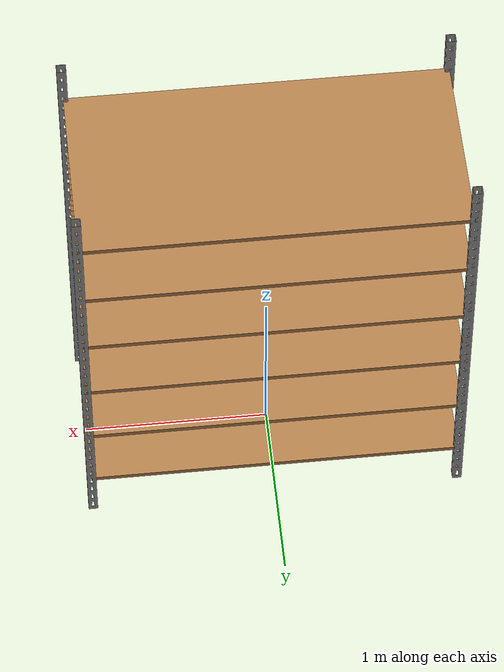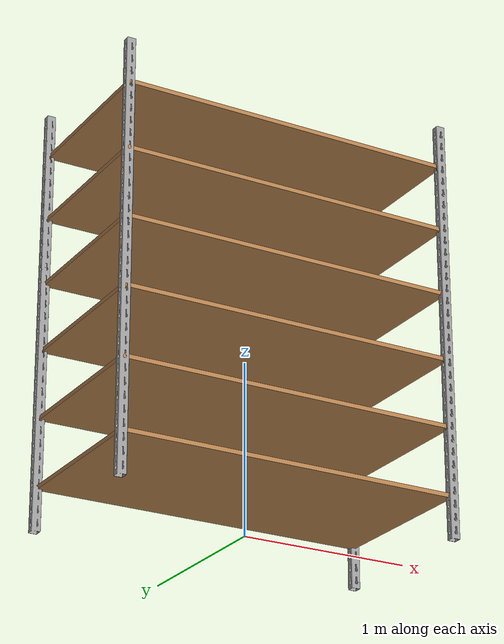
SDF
<?xml version='1.0'?>
<sdf version='1.6'>
  <model name='shelf'>
    <link name='link_1'>
      <inertial>
        <mass>1</mass>
        <inertia>
          <ixx>0.166667</ixx>
          <ixy>0</ixy>
          <ixz>0</ixz>
          <iyy>0.166667</iyy>
          <iyz>0</iyz>
          <izz>0.166667</izz>
        </inertia>
        <pose frame=''>0 0 0 0 -0 0</pose>
      </inertial>
      <pose frame=''>0 0 0 0 -0 0</pose>
      <gravity>1</gravity>
      <self_collide>0</self_collide>
      <kinematic>0</kinematic>
      <enable_wind>0</enable_wind>
      <visual name='ModelPreview_2::link_1::visual_6'>
        <pose frame=''>1 0.5 0 0 -0 0</pose>
        <geometry>
	   <mesh>
	      <uri>model://shelf/model/2-5mDirek.stl</uri>
	      <scale>0.001 0.001 0.001</scale>
           </mesh>
        </geometry>
        <material>
          <lighting>1</lighting>
          <script>
            <uri>file://media/materials/scripts/gazebo.material</uri>
            <name>Gazebo/Grey</name>
          </script>
          <shader type='vertex'>
            <normal_map>__default__</normal_map>
          </shader>
          <ambient>0.3 0.3 0.3 1</ambient>
          <diffuse>0.7 0.7 0.7 1</diffuse>
          <specular>0.01 0.01 0.01 1</specular>
          <emissive>0 0 0 1</emissive>
        </material>
        <transparency>0</transparency>
        <cast_shadows>1</cast_shadows>
      </visual>
      <visual name='ModelPreview_2::link_1::visual_7'>
        <pose frame=''>-1 0.5 0 0 -0 0</pose>
        <geometry>
	   <mesh>
	      <uri>model://shelf/model/2-5mDirek.stl</uri>
	      <scale>0.001 0.001 0.001</scale>
           </mesh>
        </geometry>
        <material>
          <lighting>1</lighting>
          <script>
            <uri>file://media/materials/scripts/gazebo.material</uri>
            <name>Gazebo/Grey</name>
          </script>
          <shader type='vertex'>
            <normal_map>__default__</normal_map>
          </shader>
          <ambient>0.3 0.3 0.3 1</ambient>
          <diffuse>0.7 0.7 0.7 1</diffuse>
          <specular>0.01 0.01 0.01 1</specular>
          <emissive>0 0 0 1</emissive>
        </material>
        <transparency>0</transparency>
        <cast_shadows>1</cast_shadows>
      </visual>
      <visual name='ModelPreview_2::link_1::visual_4'>
        <pose frame=''>0 0 1.85 0 -0 0</pose>
        <geometry>
          <box>
            <size>2 1 0.025</size>
          </box>
        </geometry>
        <material>
          <lighting>1</lighting>
          <script>
            <uri>file://media/materials/scripts/gazebo.material</uri>
            <name>Gazebo/WoodFloor</name>
          </script>
          <shader type='vertex'>
            <normal_map>__default__</normal_map>
          </shader>
          <ambient>0.3 0.3 0.3 1</ambient>
          <diffuse>0.7 0.7 0.7 1</diffuse>
          <specular>0.01 0.01 0.01 1</specular>
          <emissive>0 0 0 1</emissive>
        </material>
        <transparency>0</transparency>
        <cast_shadows>1</cast_shadows>
      </visual>
      <visual name='ModelPreview_2::link_1::visual_5'>
        <pose frame=''>0 0 2.25 0 -0 0</pose>
        <geometry>
          <box>
            <size>2 1 0.025</size>
          </box>
        </geometry>
        <material>
          <lighting>1</lighting>
          <script>
            <uri>file://media/materials/scripts/gazebo.material</uri>
            <name>Gazebo/WoodFloor</name>
          </script>
          <shader type='vertex'>
            <normal_map>__default__</normal_map>
          </shader>
          <ambient>0.3 0.3 0.3 1</ambient>
          <diffuse>0.7 0.7 0.7 1</diffuse>
          <specular>0.01 0.01 0.01 1</specular>
          <emissive>0 0 0 1</emissive>
        </material>
        <transparency>0</transparency>
        <cast_shadows>1</cast_shadows>
      </visual>
      <visual name='ModelPreview_2::link_1::visual_3'>
        <pose frame=''>0 0 1.45 0 -0 0</pose>
        <geometry>
          <box>
            <size>2 1 0.025</size>
          </box>
        </geometry>
        <material>
          <lighting>1</lighting>
          <script>
            <uri>file://media/materials/scripts/gazebo.material</uri>
            <name>Gazebo/WoodFloor</name>
          </script>
          <shader type='vertex'>
            <normal_map>__default__</normal_map>
          </shader>
          <ambient>0.3 0.3 0.3 1</ambient>
          <diffuse>0.7 0.7 0.7 1</diffuse>
          <specular>0.01 0.01 0.01 1</specular>
          <emissive>0 0 0 1</emissive>
        </material>
        <transparency>0</transparency>
        <cast_shadows>1</cast_shadows>
      </visual>
      <visual name='ModelPreview_2::link_1::visual_1'>
        <pose frame=''>0 0 0.65 0 -0 0</pose>
        <geometry>
          <box>
            <size>2 1 0.025</size>
          </box>
        </geometry>
        <material>
          <lighting>1</lighting>
          <script>
            <uri>file://media/materials/scripts/gazebo.material</uri>
            <name>Gazebo/WoodFloor</name>
          </script>
          <shader type='vertex'>
            <normal_map>__default__</normal_map>
          </shader>
          <ambient>0.3 0.3 0.3 1</ambient>
          <diffuse>0.7 0.7 0.7 1</diffuse>
          <specular>0.01 0.01 0.01 1</specular>
          <emissive>0 0 0 1</emissive>
        </material>
        <transparency>0</transparency>
        <cast_shadows>1</cast_shadows>
      </visual>
      <visual name='visual'>
        <pose frame=''>0 0 0.25 0 -0 0</pose>
        <geometry>
          <box>
            <size>2 1 0.025</size>
          </box>
        </geometry>
        <material>
          <lighting>1</lighting>
          <script>
            <uri>file://media/materials/scripts/gazebo.material</uri>
            <name>Gazebo/WoodFloor</name>
          </script>
          <shader type='vertex'>
            <normal_map>__default__</normal_map>
          </shader>
          <ambient>0.3 0.3 0.3 1</ambient>
          <diffuse>0.7 0.7 0.7 1</diffuse>
          <specular>0.01 0.01 0.01 1</specular>
          <emissive>0 0 0 1</emissive>
        </material>
        <transparency>0</transparency>
        <cast_shadows>1</cast_shadows>
      </visual>
      <visual name='ModelPreview_2::link_1::visual_2'>
        <pose frame=''>0 0 1.05 0 -0 0</pose>
        <geometry>
          <box>
            <size>2 1 0.025</size>
          </box>
        </geometry>
        <material>
          <lighting>1</lighting>
          <script>
            <uri>file://media/materials/scripts/gazebo.material</uri>
            <name>Gazebo/WoodFloor</name>
          </script>
          <shader type='vertex'>
            <normal_map>__default__</normal_map>
          </shader>
          <ambient>0.3 0.3 0.3 1</ambient>
          <diffuse>0.7 0.7 0.7 1</diffuse>
          <specular>0.01 0.01 0.01 1</specular>
          <emissive>0 0 0 1</emissive>
        </material>
        <transparency>0</transparency>
        <cast_shadows>1</cast_shadows>
      </visual>
      <visual name='ModelPreview_2::link_1::visual_8'>
        <pose frame=''>1 -0.5 0 0 -0 0</pose>
        <geometry>
	   <mesh>
	      <uri>model://shelf/model/2-5mDirek.stl</uri>
	      <scale>0.001 0.001 0.001</scale>
           </mesh>
        </geometry>
        <material>
          <lighting>1</lighting>
          <script>
            <uri>file://media/materials/scripts/gazebo.material</uri>
            <name>Gazebo/Grey</name>
          </script>
          <shader type='vertex'>
            <normal_map>__default__</normal_map>
          </shader>
          <ambient>0.3 0.3 0.3 1</ambient>
          <diffuse>0.7 0.7 0.7 1</diffuse>
          <specular>0.01 0.01 0.01 1</specular>
          <emissive>0 0 0 1</emissive>
        </material>
        <transparency>0</transparency>
        <cast_shadows>1</cast_shadows>
      </visual>
      <visual name='ModelPreview_2::link_1::visual_9'>
        <pose frame=''>-1 -0.5 0 0 -0 0</pose>
        <geometry>
	   <mesh>
	      <uri>model://shelf/model/2-5mDirek.stl</uri>
	      <scale>0.001 0.001 0.001</scale>
           </mesh>
        </geometry>
        <material>
          <lighting>1</lighting>
          <script>
            <uri>file://media/materials/scripts/gazebo.material</uri>
            <name>Gazebo/Grey</name>
          </script>
          <shader type='vertex'>
            <normal_map>__default__</normal_map>
          </shader>
          <ambient>0.3 0.3 0.3 1</ambient>
          <diffuse>0.7 0.7 0.7 1</diffuse>
          <specular>0.01 0.01 0.01 1</specular>
          <emissive>0 0 0 1</emissive>
        </material>
        <transparency>0</transparency>
        <cast_shadows>1</cast_shadows>
      </visual>
      <collision name='collision_7'>
        <laser_retro>0</laser_retro>
        <max_contacts>10</max_contacts>
        <pose frame=''>1 -0.5 1.25 0 -0 0</pose>
        <geometry>
          <box>
            <size>0.035 0.035 2.5</size>
          </box>
        </geometry>
        <surface>
          <friction>
            <ode>
              <mu>1</mu>
              <mu2>1</mu2>
              <fdir1>0 0 0</fdir1>
              <slip1>0</slip1>
              <slip2>0</slip2>
            </ode>
            <torsional>
              <coefficient>1</coefficient>
              <patch_radius>0</patch_radius>
              <surface_radius>0</surface_radius>
              <use_patch_radius>1</use_patch_radius>
              <ode>
                <slip>0</slip>
              </ode>
            </torsional>
          </friction>
          <bounce>
            <restitution_coefficient>0</restitution_coefficient>
            <threshold>1e+06</threshold>
          </bounce>
          <contact>
            <collide_without_contact>0</collide_without_contact>
            <collide_without_contact_bitmask>1</collide_without_contact_bitmask>
            <collide_bitmask>1</collide_bitmask>
            <ode>
              <soft_cfm>0</soft_cfm>
              <soft_erp>0.2</soft_erp>
              <kp>1e+13</kp>
              <kd>1</kd>
              <max_vel>0.01</max_vel>
              <min_depth>0</min_depth>
            </ode>
            <bullet>
              <split_impulse>1</split_impulse>
              <split_impulse_penetration_threshold>-0.01</split_impulse_penetration_threshold>
              <soft_cfm>0</soft_cfm>
              <soft_erp>0.2</soft_erp>
              <kp>1e+13</kp>
              <kd>1</kd>
            </bullet>
          </contact>
        </surface>
      </collision>
      <collision name='collision_6'>
        <laser_retro>0</laser_retro>
        <max_contacts>10</max_contacts>
        <pose frame=''>1 0.5 1.25 0 -0 0</pose>
        <geometry>
          <box>
            <size>0.035 0.035 2.5</size>
          </box>
        </geometry>
        <surface>
          <friction>
            <ode>
              <mu>1</mu>
              <mu2>1</mu2>
              <fdir1>0 0 0</fdir1>
              <slip1>0</slip1>
              <slip2>0</slip2>
            </ode>
            <torsional>
              <coefficient>1</coefficient>
              <patch_radius>0</patch_radius>
              <surface_radius>0</surface_radius>
              <use_patch_radius>1</use_patch_radius>
              <ode>
                <slip>0</slip>
              </ode>
            </torsional>
          </friction>
          <bounce>
            <restitution_coefficient>0</restitution_coefficient>
            <threshold>1e+06</threshold>
          </bounce>
          <contact>
            <collide_without_contact>0</collide_without_contact>
            <collide_without_contact_bitmask>1</collide_without_contact_bitmask>
            <collide_bitmask>1</collide_bitmask>
            <ode>
              <soft_cfm>0</soft_cfm>
              <soft_erp>0.2</soft_erp>
              <kp>1e+13</kp>
              <kd>1</kd>
              <max_vel>0.01</max_vel>
              <min_depth>0</min_depth>
            </ode>
            <bullet>
              <split_impulse>1</split_impulse>
              <split_impulse_penetration_threshold>-0.01</split_impulse_penetration_threshold>
              <soft_cfm>0</soft_cfm>
              <soft_erp>0.2</soft_erp>
              <kp>1e+13</kp>
              <kd>1</kd>
            </bullet>
          </contact>
        </surface>
      </collision>
      <collision name='collision_2'>
        <laser_retro>0</laser_retro>
        <max_contacts>10</max_contacts>
        <pose frame=''>0 0 1.05 0 -0 0</pose>
        <geometry>
          <box>
            <size>2 1 0.025</size>
          </box>
        </geometry>
        <surface>
          <friction>
            <ode>
              <mu>1</mu>
              <mu2>1</mu2>
              <fdir1>0 0 0</fdir1>
              <slip1>0</slip1>
              <slip2>0</slip2>
            </ode>
            <torsional>
              <coefficient>1</coefficient>
              <patch_radius>0</patch_radius>
              <surface_radius>0</surface_radius>
              <use_patch_radius>1</use_patch_radius>
              <ode>
                <slip>0</slip>
              </ode>
            </torsional>
          </friction>
          <bounce>
            <restitution_coefficient>0</restitution_coefficient>
            <threshold>1e+06</threshold>
          </bounce>
          <contact>
            <collide_without_contact>0</collide_without_contact>
            <collide_without_contact_bitmask>1</collide_without_contact_bitmask>
            <collide_bitmask>1</collide_bitmask>
            <ode>
              <soft_cfm>0</soft_cfm>
              <soft_erp>0.2</soft_erp>
              <kp>1e+13</kp>
              <kd>1</kd>
              <max_vel>0.01</max_vel>
              <min_depth>0</min_depth>
            </ode>
            <bullet>
              <split_impulse>1</split_impulse>
              <split_impulse_penetration_threshold>-0.01</split_impulse_penetration_threshold>
              <soft_cfm>0</soft_cfm>
              <soft_erp>0.2</soft_erp>
              <kp>1e+13</kp>
              <kd>1</kd>
            </bullet>
          </contact>
        </surface>
      </collision>
      <collision name='collision_8'>
        <laser_retro>0</laser_retro>
        <max_contacts>10</max_contacts>
        <pose frame=''>-1 0.5 1.25 0 -0 0</pose>
        <geometry>
          <box>
            <size>0.035 0.035 2.5</size>
          </box>
        </geometry>
        <surface>
          <friction>
            <ode>
              <mu>1</mu>
              <mu2>1</mu2>
              <fdir1>0 0 0</fdir1>
              <slip1>0</slip1>
              <slip2>0</slip2>
            </ode>
            <torsional>
              <coefficient>1</coefficient>
              <patch_radius>0</patch_radius>
              <surface_radius>0</surface_radius>
              <use_patch_radius>1</use_patch_radius>
              <ode>
                <slip>0</slip>
              </ode>
            </torsional>
          </friction>
          <bounce>
            <restitution_coefficient>0</restitution_coefficient>
            <threshold>1e+06</threshold>
          </bounce>
          <contact>
            <collide_without_contact>0</collide_without_contact>
            <collide_without_contact_bitmask>1</collide_without_contact_bitmask>
            <collide_bitmask>1</collide_bitmask>
            <ode>
              <soft_cfm>0</soft_cfm>
              <soft_erp>0.2</soft_erp>
              <kp>1e+13</kp>
              <kd>1</kd>
              <max_vel>0.01</max_vel>
              <min_depth>0</min_depth>
            </ode>
            <bullet>
              <split_impulse>1</split_impulse>
              <split_impulse_penetration_threshold>-0.01</split_impulse_penetration_threshold>
              <soft_cfm>0</soft_cfm>
              <soft_erp>0.2</soft_erp>
              <kp>1e+13</kp>
              <kd>1</kd>
            </bullet>
          </contact>
        </surface>
      </collision>
      <collision name='collision_4'>
        <laser_retro>0</laser_retro>
        <max_contacts>10</max_contacts>
        <pose frame=''>0 0 1.85 0 -0 0</pose>
        <geometry>
          <box>
            <size>2 1 0.025</size>
          </box>
        </geometry>
        <surface>
          <friction>
            <ode>
              <mu>1</mu>
              <mu2>1</mu2>
              <fdir1>0 0 0</fdir1>
              <slip1>0</slip1>
              <slip2>0</slip2>
            </ode>
            <torsional>
              <coefficient>1</coefficient>
              <patch_radius>0</patch_radius>
              <surface_radius>0</surface_radius>
              <use_patch_radius>1</use_patch_radius>
              <ode>
                <slip>0</slip>
              </ode>
            </torsional>
          </friction>
          <bounce>
            <restitution_coefficient>0</restitution_coefficient>
            <threshold>1e+06</threshold>
          </bounce>
          <contact>
            <collide_without_contact>0</collide_without_contact>
            <collide_without_contact_bitmask>1</collide_without_contact_bitmask>
            <collide_bitmask>1</collide_bitmask>
            <ode>
              <soft_cfm>0</soft_cfm>
              <soft_erp>0.2</soft_erp>
              <kp>1e+13</kp>
              <kd>1</kd>
              <max_vel>0.01</max_vel>
              <min_depth>0</min_depth>
            </ode>
            <bullet>
              <split_impulse>1</split_impulse>
              <split_impulse_penetration_threshold>-0.01</split_impulse_penetration_threshold>
              <soft_cfm>0</soft_cfm>
              <soft_erp>0.2</soft_erp>
              <kp>1e+13</kp>
              <kd>1</kd>
            </bullet>
          </contact>
        </surface>
      </collision>
      <collision name='collision_1'>
        <laser_retro>0</laser_retro>
        <max_contacts>10</max_contacts>
        <pose frame=''>0 0 0.65 0 -0 0</pose>
        <geometry>
          <box>
            <size>2 1 0.025</size>
          </box>
        </geometry>
        <surface>
          <friction>
            <ode>
              <mu>1</mu>
              <mu2>1</mu2>
              <fdir1>0 0 0</fdir1>
              <slip1>0</slip1>
              <slip2>0</slip2>
            </ode>
            <torsional>
              <coefficient>1</coefficient>
              <patch_radius>0</patch_radius>
              <surface_radius>0</surface_radius>
              <use_patch_radius>1</use_patch_radius>
              <ode>
                <slip>0</slip>
              </ode>
            </torsional>
          </friction>
          <bounce>
            <restitution_coefficient>0</restitution_coefficient>
            <threshold>1e+06</threshold>
          </bounce>
          <contact>
            <collide_without_contact>0</collide_without_contact>
            <collide_without_contact_bitmask>1</collide_without_contact_bitmask>
            <collide_bitmask>1</collide_bitmask>
            <ode>
              <soft_cfm>0</soft_cfm>
              <soft_erp>0.2</soft_erp>
              <kp>1e+13</kp>
              <kd>1</kd>
              <max_vel>0.01</max_vel>
              <min_depth>0</min_depth>
            </ode>
            <bullet>
              <split_impulse>1</split_impulse>
              <split_impulse_penetration_threshold>-0.01</split_impulse_penetration_threshold>
              <soft_cfm>0</soft_cfm>
              <soft_erp>0.2</soft_erp>
              <kp>1e+13</kp>
              <kd>1</kd>
            </bullet>
          </contact>
        </surface>
      </collision>
      <collision name='collision_3'>
        <laser_retro>0</laser_retro>
        <max_contacts>10</max_contacts>
        <pose frame=''>0 0 1.45 0 -0 0</pose>
        <geometry>
          <box>
            <size>2 1 0.025</size>
          </box>
        </geometry>
        <surface>
          <friction>
            <ode>
              <mu>1</mu>
              <mu2>1</mu2>
              <fdir1>0 0 0</fdir1>
              <slip1>0</slip1>
              <slip2>0</slip2>
            </ode>
            <torsional>
              <coefficient>1</coefficient>
              <patch_radius>0</patch_radius>
              <surface_radius>0</surface_radius>
              <use_patch_radius>1</use_patch_radius>
              <ode>
                <slip>0</slip>
              </ode>
            </torsional>
          </friction>
          <bounce>
            <restitution_coefficient>0</restitution_coefficient>
            <threshold>1e+06</threshold>
          </bounce>
          <contact>
            <collide_without_contact>0</collide_without_contact>
            <collide_without_contact_bitmask>1</collide_without_contact_bitmask>
            <collide_bitmask>1</collide_bitmask>
            <ode>
              <soft_cfm>0</soft_cfm>
              <soft_erp>0.2</soft_erp>
              <kp>1e+13</kp>
              <kd>1</kd>
              <max_vel>0.01</max_vel>
              <min_depth>0</min_depth>
            </ode>
            <bullet>
              <split_impulse>1</split_impulse>
              <split_impulse_penetration_threshold>-0.01</split_impulse_penetration_threshold>
              <soft_cfm>0</soft_cfm>
              <soft_erp>0.2</soft_erp>
              <kp>1e+13</kp>
              <kd>1</kd>
            </bullet>
          </contact>
        </surface>
      </collision>
      <collision name='collision_5'>
        <laser_retro>0</laser_retro>
        <max_contacts>10</max_contacts>
        <pose frame=''>0 0 2.25 0 -0 0</pose>
        <geometry>
          <box>
            <size>2 1 0.025</size>
          </box>
        </geometry>
        <surface>
          <friction>
            <ode>
              <mu>1</mu>
              <mu2>1</mu2>
              <fdir1>0 0 0</fdir1>
              <slip1>0</slip1>
              <slip2>0</slip2>
            </ode>
            <torsional>
              <coefficient>1</coefficient>
              <patch_radius>0</patch_radius>
              <surface_radius>0</surface_radius>
              <use_patch_radius>1</use_patch_radius>
              <ode>
                <slip>0</slip>
              </ode>
            </torsional>
          </friction>
          <bounce>
            <restitution_coefficient>0</restitution_coefficient>
            <threshold>1e+06</threshold>
          </bounce>
          <contact>
            <collide_without_contact>0</collide_without_contact>
            <collide_without_contact_bitmask>1</collide_without_contact_bitmask>
            <collide_bitmask>1</collide_bitmask>
            <ode>
              <soft_cfm>0</soft_cfm>
              <soft_erp>0.2</soft_erp>
              <kp>1e+13</kp>
              <kd>1</kd>
              <max_vel>0.01</max_vel>
              <min_depth>0</min_depth>
            </ode>
            <bullet>
              <split_impulse>1</split_impulse>
              <split_impulse_penetration_threshold>-0.01</split_impulse_penetration_threshold>
              <soft_cfm>0</soft_cfm>
              <soft_erp>0.2</soft_erp>
              <kp>1e+13</kp>
              <kd>1</kd>
            </bullet>
          </contact>
        </surface>
      </collision>
      <collision name='collision'>
        <laser_retro>0</laser_retro>
        <max_contacts>10</max_contacts>
        <pose frame=''>0 0 0.25 0 -0 0</pose>
        <geometry>
          <box>
            <size>2 1 0.025</size>
          </box>
        </geometry>
        <surface>
          <friction>
            <ode>
              <mu>1</mu>
              <mu2>1</mu2>
              <fdir1>0 0 0</fdir1>
              <slip1>0</slip1>
              <slip2>0</slip2>
            </ode>
            <torsional>
              <coefficient>1</coefficient>
              <patch_radius>0</patch_radius>
              <surface_radius>0</surface_radius>
              <use_patch_radius>1</use_patch_radius>
              <ode>
                <slip>0</slip>
              </ode>
            </torsional>
          </friction>
          <bounce>
            <restitution_coefficient>0</restitution_coefficient>
            <threshold>1e+06</threshold>
          </bounce>
          <contact>
            <collide_without_contact>0</collide_without_contact>
            <collide_without_contact_bitmask>1</collide_without_contact_bitmask>
            <collide_bitmask>1</collide_bitmask>
            <ode>
              <soft_cfm>0</soft_cfm>
              <soft_erp>0.2</soft_erp>
              <kp>1e+13</kp>
              <kd>1</kd>
              <max_vel>0.01</max_vel>
              <min_depth>0</min_depth>
            </ode>
            <bullet>
              <split_impulse>1</split_impulse>
              <split_impulse_penetration_threshold>-0.01</split_impulse_penetration_threshold>
              <soft_cfm>0</soft_cfm>
              <soft_erp>0.2</soft_erp>
              <kp>1e+13</kp>
              <kd>1</kd>
            </bullet>
          </contact>
        </surface>
      </collision>
      <collision name='collision_9'>
        <laser_retro>0</laser_retro>
        <max_contacts>10</max_contacts>
        <pose frame=''>-1 -0.5 1.25 0 -0 0</pose>
        <geometry>
          <box>
            <size>0.035 0.035 2.5</size>
          </box>
        </geometry>
        <surface>
          <friction>
            <ode>
              <mu>1</mu>
              <mu2>1</mu2>
              <fdir1>0 0 0</fdir1>
              <slip1>0</slip1>
              <slip2>0</slip2>
            </ode>
            <torsional>
              <coefficient>1</coefficient>
              <patch_radius>0</patch_radius>
              <surface_radius>0</surface_radius>
              <use_patch_radius>1</use_patch_radius>
              <ode>
                <slip>0</slip>
              </ode>
            </torsional>
          </friction>
          <bounce>
            <restitution_coefficient>0</restitution_coefficient>
            <threshold>1e+06</threshold>
          </bounce>
          <contact>
            <collide_without_contact>0</collide_without_contact>
            <collide_without_contact_bitmask>1</collide_without_contact_bitmask>
            <collide_bitmask>1</collide_bitmask>
            <ode>
              <soft_cfm>0</soft_cfm>
              <soft_erp>0.2</soft_erp>
              <kp>1e+13</kp>
              <kd>1</kd>
              <max_vel>0.01</max_vel>
              <min_depth>0</min_depth>
            </ode>
            <bullet>
              <split_impulse>1</split_impulse>
              <split_impulse_penetration_threshold>-0.01</split_impulse_penetration_threshold>
              <soft_cfm>0</soft_cfm>
              <soft_erp>0.2</soft_erp>
              <kp>1e+13</kp>
              <kd>1</kd>
            </bullet>
          </contact>
        </surface>
      </collision>
    </link>
    <static>1</static>
    <allow_auto_disable>1</allow_auto_disable>
  </model>
</sdf>
